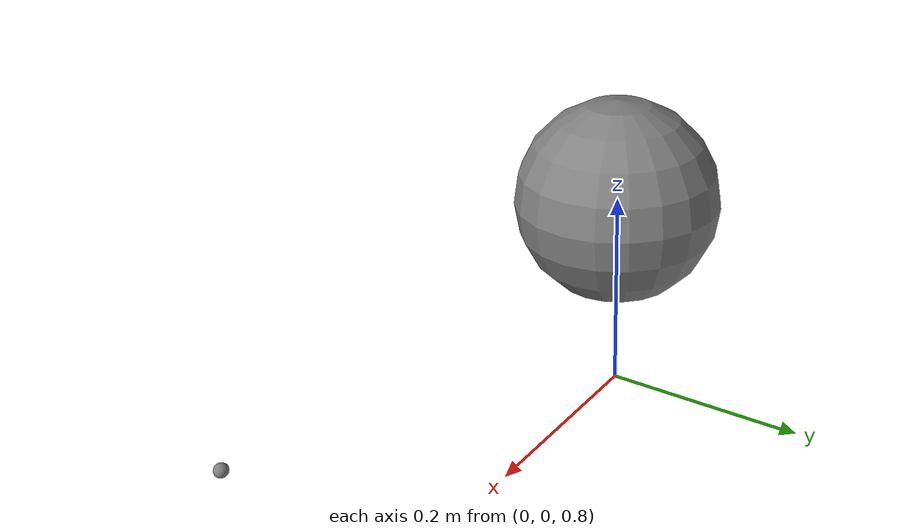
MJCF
<mujoco model="t30">
            <worldbody>
                <body name="b1" pos="0 0 1">
                    <joint type="free"/>
                    <geom type="sphere" size="0.1" mass="1"/>
                    <site name="s1" pos="0 0 0"/>
                    <site name="s2" pos="0.5 0 0"/>
                </body>
            </worldbody>
            <sensor>
                <framepos site="s1" reftype="site" refname="s2"/>
                <framepos site="s2"/>
            </sensor>
        </mujoco>
